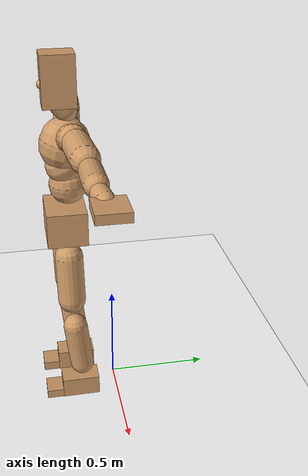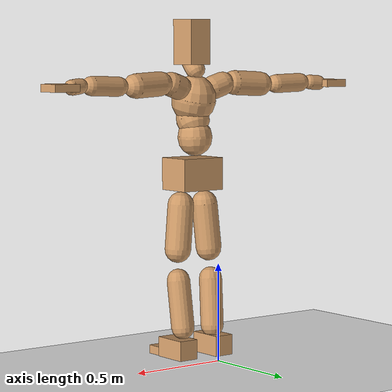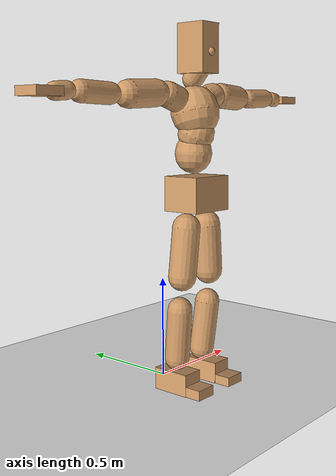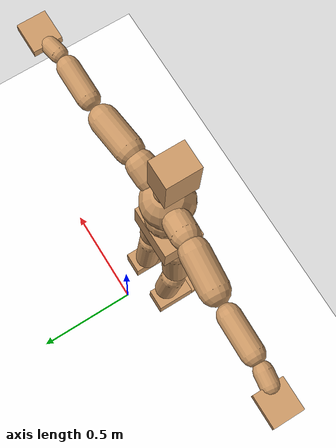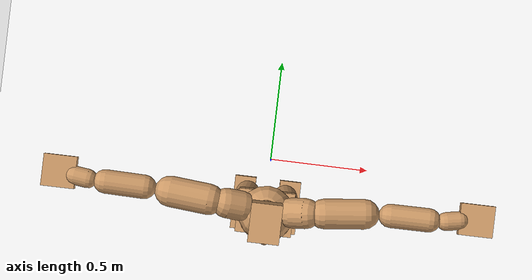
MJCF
<mujoco model="humanoid">
  <option integrator="implicitfast" />

  <visual>
    <global offwidth="1280" offheight="960" />
    <headlight active="1" ambient="0.34 0.34 0.34" diffuse="0.5 0.5 0.5" />
  </visual>

  <default>
    <joint damping="2" stiffness="2" armature="0.01" limited="true" solimplimit="0 .99 .01" />
    <geom condim="1" friction="0.7 0.005 0.0001" solimp=".99 .99 .003" solref="0.015 1" margin="0.001" rgba="0.8 0.6 .4 1" />
    <default class="smplcontact">
      <geom condim="3" friction="1. 0.005 0.0001" solref="0.015 1" solimp="0.98 0.98 0.001" priority="1" />
    </default>
    <default class="stiff_medium">
      <joint stiffness="10" />
    </default>
    <default class="stiff_medium_higher">
      <joint stiffness="50" />
    </default>
    <default class="stiff_high">
      <joint stiffness="100" />
    </default>
  </default>

  <asset>
    <texture type="skybox" builtin="gradient" rgb1="0.99 0.99 0.99" rgb2="0.608 0.828 0.892" width="100" />
    <texture builtin="flat" height="1278" mark="cross" markrgb="1 1 1" name="texgeom" random="0.01" rgb1="0.8 0.6 0.4" rgb2="0.8 0.6 0.4" type="cube" width="127" />
    <texture name="texplane" type="2d" builtin="checker" markrgb="1 1 1" rgb1="0.756 0.772 0.76" rgb2="0.6 0.6 0.6" width="100" height="100" />
    <material name="MatPlane" reflectance="0.5" texture="texplane" texrepeat="1 1" texuniform="true" />
    <material name="geom" texture="texgeom" texuniform="true" />
  </asset>

  <worldbody>
    <light name="tracking_light" pos="0 0 7" dir="0 0 -1" directional="true" cutoff="100" exponent="1" diffuse="1 1 1" specular="0.1 0.1 0.1" mode="trackcom" />
    <camera name="back" pos="0 3 2.4" xyaxes="-1 0 0 0 -1 2" mode="trackcom" />
    <camera name="side" pos="-3 0 2.4" xyaxes="0 -1 0 1 0 2" mode="trackcom" />
    <camera name="front_side" pos="-2.8 -2.8 0.8" xyaxes="0.5 -0.5 0 0.1 0.1 1" mode="trackcom" />
    <geom condim="3" name="floor" pos="0 0 0" rgba="1 1 1 1" size="100 100 .2" type="plane" material="MatPlane" />
    <body name="Pelvis" pos="-0.0018 -0.2233 0.959258" euler="90 0 0">
      <site name="Pelvis" size="0.01" />
      <freejoint name="Pelvis" />
      <geom type="box" pos="-0.0000 -0.0121 -0.0055" size="0.122935 0.08303 0.09545" quat="1.0000 0.0000 0.0000 0.0000" density="3165.830099" name="Pelvis" />
      <body name="L_Hip" pos="0.07089 -0.093228 -0.006936">
        <joint name="L_Hip_x" type="hinge" pos="0 0 0" axis="1 0 0" stiffness="12.913772959183675" range="-160.0 22.92" class="stiff_medium" damping="19.67086949944347" armature="0.013317154847417197"/>
        <joint name="L_Hip_y" type="hinge" pos="0 0 0" axis="0 1 0" stiffness="12.939137857142855" range="-70.0 70.0" class="stiff_medium" damping="13.716441294311576" armature="0.01454044031816506"/>
        <joint name="L_Hip_z" type="hinge" pos="0 0 0" axis="0 0 1" stiffness="12.933318469387753" range="-28.65 90.0" class="stiff_medium" damping="13.122931003341316" armature="0.013315323404899422"/>
        <geom type="capsule" density="2040.816327" fromto="0.007038 -0.0765 -0.000918 0.027948 -0.306204 -0.003672" size="0.06765" name="L_Hip" />
        <body name="L_Knee" pos="0.034986 -0.382704 -0.00459">
          <joint name="L_Knee_x" type="hinge" pos="0 0 0" axis="1 0 0" range="-5.16 171.89" damping="10.613198794499981" armature="0.013517774054281055" stiffness="2.603978755102041"/>
          <joint name="L_Knee_y" type="hinge" pos="0 0 0" axis="0 1 0" range="-4.58 6.88" damping="11.061387435569776" armature="0.014756923432894009" stiffness="2.591035755102041"/>
          <joint name="L_Knee_z" type="hinge" pos="0 0 0" axis="0 0 1" range="-6.88 4.58" damping="10.622461790915674" armature="0.01350871866566859" stiffness="2.6102747346938777"/>
          <geom type="capsule" density="1234.567901" fromto="-0.002754 -0.081192 -0.008874 -0.011118 -0.324768 -0.0357" size="0.05951" name="L_Knee" />
          <body name="L_Ankle" pos="-0.013872 -0.40596 -0.044574">
            <joint name="L_Ankle_x" type="hinge" pos="0 0 0" axis="1 0 0" range="-45.84 45.84" class="stiff_medium" damping="8.453165639774003" armature="0.01462035877603122" stiffness="13.5762"/>
            <joint name="L_Ankle_y" type="hinge" pos="0 0 0" axis="0 1 0" range="-74.48 22.92" class="stiff_medium" damping="4.23455929773648" armature="0.014675594419356806" stiffness="13.5762"/>
            <joint name="L_Ankle_z" type="hinge" pos="0 0 0" axis="0 0 1" range="-4.58 4.58" class="stiff_medium" damping="8.57282284110137" armature="0.015037199794270158" stiffness="13.5762"/>
            <geom type="box" pos="0.023766 -0.024378 0.024684" size="0.05313 0.05104 0.0935" quat="1.0000 0.0000 0.0000 0.0000" density="449.071558" name="L_Ankle" class="smplcontact" />
            <body name="L_Toe" pos="0.026928 -0.056916 0.121686">
              <joint name="L_Toe_x" type="hinge" pos="0 0 0" axis="1 0 0" range="-91.67 22.92" armature="0.015246872933253549" damping="2.8774613555454525" stiffness="2.71524"/>
              <joint name="L_Toe_y" type="hinge" pos="0 0 0" axis="0 1 0" range="-4.58 4.58" armature="0.015500409746313335" damping="2.9012870440402763" stiffness="2.71524"/>
              <joint name="L_Toe_z" type="hinge" pos="0 0 0" axis="0 0 1" range="-4.58 4.58" armature="0.01601304753576421" damping="2.9488732489209646" stiffness="2.71524"/>
              <geom type="box" pos="-0.00306 0.00561 0.025296" size="0.05258 0.022 0.05456" quat="1.0000 0.0000 0.0000 0.0000" density="423.206892" name="L_Toe" class="smplcontact" />
            </body>
          </body>
        </body>
      </body>
      <body name="R_Hip" pos="-0.069054 -0.09231 -0.004386">
        <joint name="R_Hip_x" type="hinge" pos="0 0 0" axis="1 0 0" stiffness="12.913772959183675" range="-160.0 22.92" class="stiff_medium" damping="19.67086949944347" armature="0.013317154847417197"/>
        <joint name="R_Hip_y" type="hinge" pos="0 0 0" axis="0 1 0" stiffness="12.939137857142855" range="-70.0 70.0" class="stiff_medium" damping="13.716441294311576" armature="0.01454044031816506"/>
        <joint name="R_Hip_z" type="hinge" pos="0 0 0" axis="0 0 1" stiffness="12.933318469387753" range="-90.0 28.65" class="stiff_medium" damping="13.122931003341316" armature="0.013315323404899422"/>
        <geom type="capsule" density="2040.816327" fromto="-0.007854 -0.07803 -0.001836 -0.031212 -0.312222 -0.007242" size="0.06666" name="R_Hip" />
        <body name="R_Knee" pos="-0.039066 -0.390252 -0.009078">
          <joint name="R_Knee_x" type="hinge" pos="0 0 0" axis="1 0 0" range="-5.16 171.89" damping="10.613198794499981" armature="0.013517774054281055" stiffness="2.603978755102041"/>
          <joint name="R_Knee_y" type="hinge" pos="0 0 0" axis="0 1 0" range="-6.88 4.58" damping="11.061387435569776" armature="0.014756923432894009" stiffness="2.591035755102041"/>
          <joint name="R_Knee_z" type="hinge" pos="0 0 0" axis="0 0 1" range="-4.58 6.88" damping="10.622461790915674" armature="0.01350871866566859" stiffness="2.6102747346938777"/>
          <geom type="capsule" density="1234.567901" fromto="0.003264 -0.081294 -0.00867 0.012852 -0.325074 -0.034476" size="0.05951" name="R_Knee" />
          <body name="R_Ankle" pos="0.016116 -0.406368 -0.043146">
            <joint name="R_Ankle_x" type="hinge" pos="0 0 0" axis="1 0 0" range="-45.84 45.84" class="stiff_medium" damping="8.453165639774003" armature="0.01462035877603122" stiffness="13.5762"/>
            <joint name="R_Ankle_y" type="hinge" pos="0 0 0" axis="0 1 0" range="-22.92 74.48" class="stiff_medium" damping="4.23455929773648" armature="0.014675594419356806" stiffness="13.5762"/>
            <joint name="R_Ankle_z" type="hinge" pos="0 0 0" axis="0 0 1" range="-4.58 4.58" class="stiff_medium" damping="8.57282284110137" armature="0.015037199794270158" stiffness="13.5762"/>
            <geom type="box" pos="-0.021624 -0.017748 0.026112" size="0.05313 0.05258 0.09515" quat="1.0000 0.0000 0.0000 0.0000" density="434.700981" name="R_Ankle" class="smplcontact" />
            <body name="R_Toe" pos="-0.025908 -0.049062 0.125766">
              <joint name="R_Toe_x" type="hinge" pos="0 0 0" axis="1 0 0" range="-91.67 22.92" armature="0.015246872933253549" damping="2.8774613555454525" stiffness="2.71524"/>
              <joint name="R_Toe_y" type="hinge" pos="0 0 0" axis="0 1 0" range="-4.58 4.58" armature="0.015500409746313335" damping="2.9012870440402763" stiffness="2.71524"/>
              <joint name="R_Toe_z" type="hinge" pos="0 0 0" axis="0 0 1" range="-4.58 4.58" armature="0.01601304753576421" damping="2.9488732489209646" stiffness="2.71524"/>
              <geom type="box" pos="0.004284 0.00459 0.023154" size="0.05269 0.02376 0.05423" quat="1.0000 0.0000 0.0000 0.0000" density="407.384095" name="R_Toe" class="smplcontact" />
            </body>
          </body>
        </body>
      </body>
      <body name="Torso" pos="-0.0025 0.109 -0.0267">
        <joint name="Torso_x" type="hinge" pos="0 0 0" axis="1 0 0" range="-25.78 57.3" class="stiff_medium" damping="20.649750622933148" armature="0.013560313687685246" stiffness="13.975822244897957"/>
        <joint name="Torso_y" type="hinge" pos="0 0 0" axis="0 1 0" range="-57.3 57.3" class="stiff_high" damping="31.345765577524794" armature="0.01771686147346061" stiffness="138.64716122448982"/>
        <joint name="Torso_z" type="hinge" pos="0 0 0" axis="0 0 1" range="-34.38 34.38" class="stiff_high" damping="28.902267822454842" armature="0.014892670367675998" stiffness="140.22688085106384"/>
        <geom type="capsule" density="2040.816327" fromto="0.0025 0.0608 0.0005 0.003 0.0743 0.0006" size="0.088435" name="Torso" />
        <body name="Spine" pos="0.0055 0.1352 0.0011">
          <joint name="Spine_x" type="hinge" pos="0 0 0" axis="1 0 0" stiffness="13.697112653061225" range="-25.78 57.3" class="stiff_medium" damping="20.004319197398836" armature="0.012984822152344744"/>
          <joint name="Spine_y" type="hinge" pos="0 0 0" axis="0 1 0" stiffness="13.792787959183677" range="-57.3 57.3" class="stiff_high" damping="12.502169347221788" armature="0.01770674451037785"/>
          <joint name="Spine_z" type="hinge" pos="0 0 0" axis="0 0 1" stiffness="27.62337346938775" range="-34.38 34.38" class="stiff_high" damping="17.538187135416955" armature="0.015465365486072778"/>
          <geom type="capsule" density="2040.816327" fromto="0.0007 0.0238 0.0114 0.0008 0.0291 0.014" size="0.086825" name="Spine" />
          <body name="Chest" pos="0.0015 0.0529 0.0254">
            <joint name="Chest_x" type="hinge" pos="0 0 0" axis="1 0 0" stiffness="13.71752" range="-25.78 57.3" class="stiff_medium" damping="19.813895661167543" armature="0.012719839260599549"/>
            <joint name="Chest_y" type="hinge" pos="0 0 0" axis="0 1 0" stiffness="15.01764288888889" range="-57.3 57.3" class="stiff_high" damping="13.039498441779394" armature="0.017690496695199412"/>
            <joint name="Chest_z" type="hinge" pos="0 0 0" axis="0 0 1" stiffness="27.076981276595742" range="-34.38 34.38" class="stiff_high" damping="17.544789086866746" armature="0.015789324937327723"/>
            <geom type="capsule" density="2040.816327" fromto="-0.0009 0.0682 -0.0173 -0.001 0.0833 -0.0212" size="0.11523" name="Chest" />
            <body name="Neck" pos="-0.0028 0.2139 -0.0429">
              <joint name="Neck_x" type="hinge" pos="0 0 0" axis="1 0 0" range="-28.65 57.3" class="stiff_medium_higher" damping="10.186345254599932" armature="0.010086749621556654" stiffness="51.43462142857144"/>
              <joint name="Neck_y" type="hinge" pos="0 0 0" axis="0 1 0" range="-40.11 40.11" class="stiff_medium_higher" damping="10.300625061360424" armature="0.010349639184005752" stiffness="51.25921530612244"/>
              <joint name="Neck_z" type="hinge" pos="0 0 0" axis="0 0 1" range="-40.11 40.11" class="stiff_medium_higher" damping="10.104907800267549" armature="0.010072514268974165" stiffness="50.687027551020414"/>
              <geom type="capsule" density="1000" fromto="0.001 0.013 0.0103 0.0041 0.052 0.0411" size="0.05014" name="Neck" />
              <body name="Head" pos="0.0052 0.065 0.0513">
                <joint name="Head_x" type="hinge" pos="0 0 0" axis="1 0 0" range="-28.65 57.3" class="stiff_medium_higher" damping="2.0000000000000004" armature="0.010000000000000005" stiffness="50.0"/>
                <joint name="Head_y" type="hinge" pos="0 0 0" axis="0 1 0" range="-40.11 40.11" class="stiff_medium_higher" damping="1.9999999999999998" armature="0.009999999999999998" stiffness="50.0"/>
                <joint name="Head_z" type="hinge" pos="0 0 0" axis="0 0 1" range="-40.11 40.11" class="stiff_medium_higher" damping="2.0000000000000018" armature="0.010000000000000018" stiffness="50.0"/>
                <geom type="box" pos="-0.0042 0.0876 -0.0116" size="0.0606 0.1154 0.076" quat="1.0000 0.0000 0.0000 0.0000" density="1018.069894" name="Head" />
                <geom type="capsule" name="nose" size="0.02 0.01" pos="0 0.07 0.05" quat="1 0 0 0" mass="0" contype="0" conaffinity="0" />
              </body>
            </body>
            <body name="L_Thorax" pos="0.08274 0.127785 -0.035805">
              <joint name="L_Thorax_x" type="hinge" pos="0 0 0" axis="1 0 0" range="-10.89 4.58" class="stiff_medium_higher" damping="36.66722374048541" armature="0.020052263515756633" stiffness="83.81131734693878"/>
              <joint name="L_Thorax_y" type="hinge" pos="0 0 0" axis="0 1 0" range="-28.65 17.19" class="stiff_medium_higher" damping="34.4498999557511" armature="0.017763614001268076" stiffness="83.51310204081632"/>
              <joint name="L_Thorax_z" type="hinge" pos="0 0 0" axis="0 0 1" range="-31.51 40.11" class="stiff_medium_higher" damping="34.448604180099636" armature="0.017761545177339855" stiffness="83.51654642857143"/>
              <geom type="capsule" density="1000" fromto="0.01911 0.006405 -0.00189 0.07644 0.02562 -0.007455" size="0.06252" name="L_Thorax" />
              <body name="L_Shoulder" pos="0.09555 0.032025 -0.009345">
                <joint name="L_Shoulder_x" type="hinge" pos="0 0 0" axis="1 0 0" range="-97.4 97.4" class="stiff_medium" damping="11.250774171711232" armature="0.020932344464183253" stiffness="16.79749193877551"/>
                <joint name="L_Shoulder_y" type="hinge" pos="0 0 0" axis="0 1 0" range="-108.86 80.21" class="stiff_medium" damping="10.362903571637078" armature="0.017838022759870804" stiffness="16.72298112244898"/>
                <joint name="L_Shoulder_z" type="hinge" pos="0 0 0" axis="0 0 1" range="-97.4 85.94" class="stiff_medium" damping="10.364019059069612" armature="0.017835273803587976" stiffness="16.729159591836734"/>
                <geom type="capsule" density="1000" fromto="0.054495 -0.00273 -0.005775 0.218085 -0.01071 -0.0231" size="0.06204" name="L_Shoulder" />
                <body name="L_Elbow" pos="0.27258 -0.01344 -0.028875">
                  <joint name="L_Elbow_x" type="hinge" pos="0 0 0" axis="1 0 0" range="-17.19 4.58" damping="9.740406835323766" armature="0.022372807255207662" stiffness="3.392530020408163"/>
                  <joint name="L_Elbow_y" type="hinge" pos="0 0 0" axis="0 1 0" range="-180.0 17.19" damping="8.785909572890047" armature="0.018202067651064354" stiffness="3.3926786122448984"/>
                  <joint name="L_Elbow_z" type="hinge" pos="0 0 0" axis="0 0 1" range="-100.84 4.58" damping="8.784445856511919" armature="0.018187638618942407" stiffness="3.3942389387755103"/>
                  <geom type="capsule" density="1000" fromto="0.05229 0.00189 -0.00021 0.20937 0.00756 -0.000945" size="0.0486" name="L_Elbow" />
                  <body name="L_Wrist" pos="0.26166 0.00945 -0.00126">
                    <joint name="L_Wrist_x" type="hinge" pos="0 0 0" axis="1 0 0" range="-180.0 22.92" armature="0.022870704610560306" damping="4.028108486509442" stiffness="3.5472580000000007"/>
                    <joint name="L_Wrist_y" type="hinge" pos="0 0 0" axis="0 1 0" range="-17.19 17.19" armature="0.01950353274109256" damping="3.7135543361183925" stiffness="3.5353815102040818"/>
                    <joint name="L_Wrist_z" type="hinge" pos="0 0 0" axis="0 0 1" range="-22.92 22.92" armature="0.019313813991295437" damping="3.6970963628233315" stiffness="3.5385350408163267"/>
                    <geom type="capsule" density="1000" fromto="0.01764 -0.00168 -0.00315 0.07056 -0.006825 -0.0126" size="0.03816" name="L_Wrist" class="smplcontact" />
                    <body name="L_Hand" pos="0.0882 -0.00861 -0.015645">
                      <joint name="L_Hand_x" type="hinge" pos="0 0 0" axis="1 0 0" range="-17.19 17.19" armature="0.02462912215184373" damping="4.227863726862788" stiffness="3.6287999999999996"/>
                      <joint name="L_Hand_y" type="hinge" pos="0 0 0" axis="0 1 0" range="-51.57 51.57" armature="0.021810478964606434" damping="3.9785893496756817" stiffness="3.6287999999999996"/>
                      <joint name="L_Hand_z" type="hinge" pos="0 0 0" axis="0 0 1" range="-91.67 91.67" armature="0.02105913111169712" damping="3.9094596807775495" stiffness="3.6287999999999996"/>
                      <geom type="box" pos="0.051765 0.00105 -0.00609" size="0.0702 0.01896 0.06456" quat="1.0000 0.0000 0.0000 0.0000" density="400.552564" name="L_Hand" class="smplcontact" />
                    </body>
                  </body>
                </body>
              </body>
            </body>
            <body name="R_Thorax" pos="-0.08589 0.12474 -0.04053">
              <joint name="R_Thorax_x" type="hinge" pos="0 0 0" axis="1 0 0" range="-10.89 4.58" class="stiff_medium_higher" damping="36.66722374048541" armature="0.020052263515756633" stiffness="83.81131734693878"/>
              <joint name="R_Thorax_y" type="hinge" pos="0 0 0" axis="0 1 0" range="-17.19 28.65" class="stiff_medium_higher" damping="34.4498999557511" armature="0.017763614001268076" stiffness="83.51310204081632"/>
              <joint name="R_Thorax_z" type="hinge" pos="0 0 0" axis="0 0 1" range="-40.11 31.51" class="stiff_medium_higher" damping="34.448604180099636" armature="0.017761545177339855" stiffness="83.51654642857143"/>
              <geom type="capsule" density="1000" fromto="-0.02016 0.006825 -0.00189 -0.08064 0.0273 -0.007665" size="0.06132" name="R_Thorax" />
              <body name="R_Shoulder" pos="-0.1008 0.03423 -0.009555">
                <joint name="R_Shoulder_x" type="hinge" pos="0 0 0" axis="1 0 0" range="-97.4 97.4" class="stiff_medium" damping="11.250774171711232" armature="0.020932344464183253" stiffness="16.79749193877551"/>
                <joint name="R_Shoulder_y" type="hinge" pos="0 0 0" axis="0 1 0" range="-80.21 108.86" class="stiff_medium" damping="10.362903571637078" armature="0.017838022759870804" stiffness="16.72298112244898"/>
                <joint name="R_Shoulder_z" type="hinge" pos="0 0 0" axis="0 0 1" range="-85.94 97.4" class="stiff_medium" damping="10.364019059069612" armature="0.017835273803587976" stiffness="16.729159591836734"/>
                <geom type="capsule" density="1000" fromto="-0.053235 -0.002835 -0.004515 -0.21315 -0.011235 -0.017955" size="0.06372" name="R_Shoulder" />
                <body name="R_Elbow" pos="-0.266385 -0.013965 -0.02247">
                  <joint name="R_Elbow_x" type="hinge" pos="0 0 0" axis="1 0 0" range="-17.19 4.58" damping="9.740406835323766" armature="0.022372807255207662" stiffness="3.392530020408163"/>
                  <joint name="R_Elbow_y" type="hinge" pos="0 0 0" axis="0 1 0" range="-17.19 180.0" damping="8.785909572890047" armature="0.018202067651064354" stiffness="3.3926786122448984"/>
                  <joint name="R_Elbow_z" type="hinge" pos="0 0 0" axis="0 0 1" range="-4.58 100.84" damping="8.784445856511919" armature="0.018187638618942407" stiffness="3.3942389387755103"/>
                  <geom type="capsule" density="1000" fromto="-0.053655 0.00168 -0.001155 -0.21441 0.00651 -0.00462" size="0.04896" name="R_Elbow" />
                  <body name="R_Wrist" pos="-0.268065 0.00819 -0.00588">
                    <joint name="R_Wrist_x" type="hinge" pos="0 0 0" axis="1 0 0" range="-180.0 22.92" armature="0.022870704610560306" damping="4.028108486509442" stiffness="3.5472580000000007"/>
                    <joint name="R_Wrist_y" type="hinge" pos="0 0 0" axis="0 1 0" range="-17.19 17.19" armature="0.01950353274109256" damping="3.7135543361183925" stiffness="3.5353815102040818"/>
                    <joint name="R_Wrist_z" type="hinge" pos="0 0 0" axis="0 0 1" range="-22.92 22.92" armature="0.019313813991295437" damping="3.6970963628233315" stiffness="3.5385350408163267"/>
                    <geom type="capsule" density="1000" fromto="-0.017745 -0.00126 -0.002205 -0.071085 -0.005145 -0.008715" size="0.03912" name="R_Wrist" class="smplcontact" />
                    <body name="R_Hand" pos="-0.08883 -0.006405 -0.010815">
                      <joint name="R_Hand_x" type="hinge" pos="0 0 0" axis="1 0 0" range="-17.19 17.19" armature="0.02462912215184373" damping="4.227863726862788" stiffness="3.6287999999999996"/>
                      <joint name="R_Hand_y" type="hinge" pos="0 0 0" axis="0 1 0" range="-51.57 51.57" armature="0.021810478964606434" damping="3.9785893496756817" stiffness="3.6287999999999996"/>
                      <joint name="R_Hand_z" type="hinge" pos="0 0 0" axis="0 0 1" range="-91.67 91.67" armature="0.02105913111169712" damping="3.9094596807775495" stiffness="3.6287999999999996"/>
                      <geom type="box" pos="-0.04851 -0.000945 -0.008295" size="0.06828 0.01968 0.06552" quat="1.0000 0.0000 0.0000 0.0000" density="403.679611" name="R_Hand" class="smplcontact" />
                    </body>
                  </body>
                </body>
              </body>
            </body>
          </body>
        </body>
      </body>
    </body>
  </worldbody>
  <actuator>
    <general name="L_Hip_x" joint="L_Hip_x" biastype="affine" gainprm="371.0515212100515" biasprm="-278.06550692911577 -232.4479132653061 -2.622782599925796" ctrllimited="true" ctrlrange="-1 1" forcerange="-464.8958265306122 464.8958265306122" />
    <general name="L_Hip_y" joint="L_Hip_y" biastype="affine" gainprm="284.546503050499" biasprm="0.0 -232.9044814285714 -2.7432882588623153" ctrllimited="true" ctrlrange="-1 1" forcerange="-465.8089628571428 465.8089628571428" />
    <general name="L_Hip_z" joint="L_Hip_z" biastype="affine" gainprm="241.04470250522186" biasprm="124.63626210446994 -232.79973244897957 -2.624586200668263" ctrllimited="true" ctrlrange="-1 1" forcerange="-465.59946489795914 465.59946489795914" />
    <general name="L_Knee_x" joint="L_Knee_x" biastype="affine" gainprm="362.09560133220083" biasprm="340.98954877219904 -234.3580879591837 -2.6532996986249953" ctrllimited="true" ctrlrange="-1 1" forcerange="-468.7161759183674 468.7161759183674" />
    <general name="L_Knee_y" joint="L_Knee_y" biastype="affine" gainprm="23.32103952963986" biasprm="4.680487863714807 -233.1932179591837 -2.765346858892444" ctrllimited="true" ctrlrange="-1 1" forcerange="-466.3864359183674 466.3864359183674" />
    <general name="L_Knee_z" joint="L_Knee_z" biastype="affine" gainprm="23.494203100496676" biasprm="-4.715241459960066 -234.924726122449 -2.6556154477289184" ctrllimited="true" ctrlrange="-1 1" forcerange="-469.849452244898 469.849452244898" />
    <general name="L_Ankle_x" joint="L_Ankle_x" biastype="affine" gainprm="97.75584030096192" biasprm="0.0 -122.1858 -2.8177218799246675" ctrllimited="true" ctrlrange="-1 1" forcerange="-244.3716 244.3716" />
    <general name="L_Ankle_y" joint="L_Ankle_y" biastype="affine" gainprm="103.85491759722612" biasprm="-54.976997446745166 -122.1858 -2.8230395318243198" ctrllimited="true" ctrlrange="-1 1" forcerange="-244.3716 244.3716" />
    <general name="L_Ankle_z" joint="L_Ankle_z" biastype="affine" gainprm="9.767053852059457" biasprm="0.0 -122.1858 -2.857607613700457" ctrllimited="true" ctrlrange="-1 1" forcerange="-244.3716 244.3716" />
    <general name="L_Toe_x" joint="L_Toe_x" biastype="affine" gainprm="97.74731012292516" biasprm="-58.6449740025404 -97.74864000000001 -1.150984542218181" ctrllimited="true" ctrlrange="-1 1" forcerange="-195.49728000000002 195.49728000000002" />
    <general name="L_Toe_y" joint="L_Toe_y" biastype="affine" gainprm="7.813643081647566" biasprm="0.0 -97.74864000000001 -1.1605148176161106" ctrllimited="true" ctrlrange="-1 1" forcerange="-195.49728000000002 195.49728000000002" />
    <general name="L_Toe_z" joint="L_Toe_z" biastype="affine" gainprm="7.813643081647566" biasprm="0.0 -97.74864000000001 -1.1795492995683858" ctrllimited="true" ctrlrange="-1 1" forcerange="-195.49728000000002 195.49728000000002" />
    <general name="R_Hip_x" joint="R_Hip_x" biastype="affine" gainprm="371.0515212100515" biasprm="-278.06550692911577 -232.4479132653061 -2.622782599925796" ctrllimited="true" ctrlrange="-1 1" forcerange="-464.8958265306122 464.8958265306122" />
    <general name="R_Hip_y" joint="R_Hip_y" biastype="affine" gainprm="284.546503050499" biasprm="0.0 -232.9044814285714 -2.7432882588623153" ctrllimited="true" ctrlrange="-1 1" forcerange="-465.8089628571428 465.8089628571428" />
    <general name="R_Hip_z" joint="R_Hip_z" biastype="affine" gainprm="241.04470250522186" biasprm="-124.63626210446994 -232.79973244897957 -2.624586200668263" ctrllimited="true" ctrlrange="-1 1" forcerange="-465.59946489795914 465.59946489795914" />
    <general name="R_Knee_x" joint="R_Knee_x" biastype="affine" gainprm="362.09560133220083" biasprm="340.98954877219904 -234.3580879591837 -2.6532996986249953" ctrllimited="true" ctrlrange="-1 1" forcerange="-468.7161759183674 468.7161759183674" />
    <general name="R_Knee_y" joint="R_Knee_y" biastype="affine" gainprm="23.32103952963986" biasprm="-4.680487863714807 -233.1932179591837 -2.765346858892444" ctrllimited="true" ctrlrange="-1 1" forcerange="-466.3864359183674 466.3864359183674" />
    <general name="R_Knee_z" joint="R_Knee_z" biastype="affine" gainprm="23.494203100496676" biasprm="4.715241459960066 -234.924726122449 -2.6556154477289184" ctrllimited="true" ctrlrange="-1 1" forcerange="-469.849452244898 469.849452244898" />
    <general name="R_Ankle_x" joint="R_Ankle_x" biastype="affine" gainprm="97.75584030096192" biasprm="0.0 -122.1858 -2.8177218799246675" ctrllimited="true" ctrlrange="-1 1" forcerange="-244.3716 244.3716" />
    <general name="R_Ankle_y" joint="R_Ankle_y" biastype="affine" gainprm="103.85491759722612" biasprm="54.976997446745166 -122.1858 -2.8230395318243198" ctrllimited="true" ctrlrange="-1 1" forcerange="-244.3716 244.3716" />
    <general name="R_Ankle_z" joint="R_Ankle_z" biastype="affine" gainprm="9.767053852059457" biasprm="0.0 -122.1858 -2.857607613700457" ctrllimited="true" ctrlrange="-1 1" forcerange="-244.3716 244.3716" />
    <general name="R_Toe_x" joint="R_Toe_x" biastype="affine" gainprm="97.74731012292516" biasprm="-58.6449740025404 -97.74864000000001 -1.150984542218181" ctrllimited="true" ctrlrange="-1 1" forcerange="-195.49728000000002 195.49728000000002" />
    <general name="R_Toe_y" joint="R_Toe_y" biastype="affine" gainprm="7.813643081647566" biasprm="0.0 -97.74864000000001 -1.1605148176161106" ctrllimited="true" ctrlrange="-1 1" forcerange="-195.49728000000002 195.49728000000002" />
    <general name="R_Toe_z" joint="R_Toe_z" biastype="affine" gainprm="7.813643081647566" biasprm="0.0 -97.74864000000001 -1.1795492995683858" ctrllimited="true" ctrlrange="-1 1" forcerange="-195.49728000000002 195.49728000000002" />
    <general name="Torso_x" joint="Torso_x" biastype="affine" gainprm="243.18258454083997" biasprm="92.26185682146453 -335.419733877551 -5.506600166115506" ctrllimited="true" ctrlrange="-1 1" forcerange="-503.12960081632644 503.12960081632644" />
    <general name="Torso_y" joint="Torso_y" biastype="affine" gainprm="332.77769800196774" biasprm="0.0 -332.75318693877557 -6.269153115504959" ctrllimited="true" ctrlrange="-1 1" forcerange="-499.1297804081633 499.1297804081633" />
    <general name="Torso_z" joint="Torso_z" biastype="affine" gainprm="201.94158262810816" biasprm="0.0 -336.5445140425532 -5.780453564490968" ctrllimited="true" ctrlrange="-1 1" forcerange="-504.8167710638298 504.8167710638298" />
    <general name="Spine_x" joint="Spine_x" biastype="affine" gainprm="238.33297228250416" biasprm="90.42194615243777 -328.7307036734694 -5.334485119306356" ctrllimited="true" ctrlrange="-1 1" forcerange="-493.0960555102041 493.0960555102041" />
    <general name="Spine_y" joint="Spine_y" biastype="affine" gainprm="331.05129492371196" biasprm="0.0 -331.02691102040825 -6.251084673610894" ctrllimited="true" ctrlrange="-1 1" forcerange="-496.54036653061235 496.54036653061235" />
    <general name="Spine_z" joint="Spine_z" biastype="affine" gainprm="198.9029393679599" biasprm="0.0 -331.480481632653 -5.846062378472318" ctrllimited="true" ctrlrange="-1 1" forcerange="-497.22072244897953 497.22072244897953" />
    <general name="Chest_x" joint="Chest_x" biastype="affine" gainprm="238.68806490497974" biasprm="90.55666593409917 -329.22048 -5.283705509644678" ctrllimited="true" ctrlrange="-1 1" forcerange="-493.83072000000004 493.83072000000004" />
    <general name="Chest_y" joint="Chest_y" biastype="affine" gainprm="360.44997862511804" biasprm="0.0 -360.42342933333333 -6.519749220889697" ctrllimited="true" ctrlrange="-1 1" forcerange="-540.635144 540.635144" />
    <general name="Chest_z" joint="Chest_z" biastype="affine" gainprm="194.9686257941861" biasprm="0.0 -324.9237753191489 -5.848263028955582" ctrllimited="true" ctrlrange="-1 1" forcerange="-487.38566297872336 487.38566297872336" />
    <general name="Neck_x" joint="Neck_x" biastype="affine" gainprm="27.776741494187597" biasprm="9.258913831395866 -37.03292742857143 -0.8149076203679946" ctrllimited="true" ctrlrange="-1 1" forcerange="-74.06585485714287 74.06585485714287" />
    <general name="Neck_y" joint="Neck_y" biastype="affine" gainprm="25.836547530181853" biasprm="0.0 -36.90663502040816 -0.824050004908834" ctrllimited="true" ctrlrange="-1 1" forcerange="-73.81327004081632 73.81327004081632" />
    <general name="Neck_z" joint="Neck_z" biastype="affine" gainprm="25.548143658944365" biasprm="0.0 -36.4946598367347 -0.8083926240214039" ctrllimited="true" ctrlrange="-1 1" forcerange="-72.9893196734694 72.9893196734694" />
    <general name="Head_x" joint="Head_x" biastype="affine" gainprm="18.001325905069514" biasprm="6.000441968356505 -24.0 -0.8000000000000003" ctrllimited="true" ctrlrange="-1 1" forcerange="-48.0 48.0" />
    <general name="Head_y" joint="Head_y" biastype="affine" gainprm="16.801237511398213" biasprm="0.0 -24.0 -0.7999999999999999" ctrllimited="true" ctrlrange="-1 1" forcerange="-48.0 48.0" />
    <general name="Head_z" joint="Head_z" biastype="affine" gainprm="16.801237511398213" biasprm="0.0 -24.0 -0.8000000000000007" ctrllimited="true" ctrlrange="-1 1" forcerange="-48.0 48.0" />
    <general name="L_Thorax_x" joint="L_Thorax_x" biastype="affine" gainprm="27.15511174559235" biasprm="-11.076196193580337 -201.14716163265308 -2.9333778992388333" ctrllimited="true" ctrlrange="-1 1" forcerange="-402.29432326530616 402.29432326530616" />
    <general name="L_Thorax_y" joint="L_Thorax_y" biastype="affine" gainprm="80.17848358293656" biasprm="-20.04462089573414 -200.43144489795918 -2.755991996460088" ctrllimited="true" ctrlrange="-1 1" forcerange="-400.86288979591836 400.86288979591836" />
    <general name="L_Thorax_z" joint="L_Thorax_z" biastype="affine" gainprm="125.2753017282582" biasprm="15.042831539556275 -200.43971142857143 -2.755888334407971" ctrllimited="true" ctrlrange="-1 1" forcerange="-400.87942285714286 400.87942285714286" />
    <general name="L_Shoulder_x" joint="L_Shoulder_x" biastype="affine" gainprm="137.06355857194015" biasprm="0.0 -80.62796130612244 -3.0002064457896616" ctrllimited="true" ctrlrange="-1 1" forcerange="-161.2559226122449 161.2559226122449" />
    <general name="L_Shoulder_y" joint="L_Shoulder_y" biastype="affine" gainprm="132.44175683548877" biasprm="-20.069055552635287 -80.2703093877551 -2.763440952436554" ctrllimited="true" ctrlrange="-1 1" forcerange="-160.5406187755102 160.5406187755102" />
    <general name="L_Shoulder_z" joint="L_Shoulder_z" biastype="affine" gainprm="128.47539468907786" biasprm="-8.030588104815292 -80.29996604081633 -2.763738415751897" ctrllimited="true" ctrlrange="-1 1" forcerange="-160.59993208163266 160.59993208163266" />
    <general name="L_Elbow_x" joint="L_Elbow_x" biastype="affine" gainprm="23.20235146628212" biasprm="-13.439671657777568 -122.13108073469387 -1.5584650936518027" ctrllimited="true" ctrlrange="-1 1" forcerange="-244.26216146938773 244.26216146938773" />
    <general name="L_Elbow_y" joint="L_Elbow_y" biastype="affine" gainprm="210.17326969300998" biasprm="-173.52964165890236 -122.13643004081635 -1.4057455316624077" ctrllimited="true" ctrlrange="-1 1" forcerange="-244.2728600816327 244.2728600816327" />
    <general name="L_Elbow_z" joint="L_Elbow_z" biastype="affine" gainprm="112.41267847996095" biasprm="-102.64508091900059 -122.19260179591836 -1.4055113370419072" ctrllimited="true" ctrlrange="-1 1" forcerange="-244.38520359183673 244.38520359183673" />
    <general name="L_Wrist_x" joint="L_Wrist_x" biastype="affine" gainprm="37.689142174720544" biasprm="-29.1750958644052 -21.283548000000003 -1.611243394603777" ctrllimited="true" ctrlrange="-1 1" forcerange="-42.56709600000001 42.56709600000001" />
    <general name="L_Wrist_y" joint="L_Wrist_y" biastype="affine" gainprm="6.364155476394053" biasprm="0.0 -21.21228906122449 -1.485421734447357" ctrllimited="true" ctrlrange="-1 1" forcerange="-42.42457812244898 42.42457812244898" />
    <general name="L_Wrist_z" joint="L_Wrist_z" biastype="affine" gainprm="8.493109666165756" biasprm="0.0 -21.23121024489796 -1.4788385451293327" ctrllimited="true" ctrlrange="-1 1" forcerange="-42.46242048979592 42.46242048979592" />
    <general name="L_Hand_x" joint="L_Hand_x" biastype="affine" gainprm="6.532321144431626" biasprm="0.0 -21.772799999999997 -1.6911454907451153" ctrllimited="true" ctrlrange="-1 1" forcerange="-43.54559999999999 43.54559999999999" />
    <general name="L_Hand_y" joint="L_Hand_y" biastype="affine" gainprm="19.596963433294874" biasprm="0.0 -21.772799999999997 -1.5914357398702728" ctrllimited="true" ctrlrange="-1 1" forcerange="-43.54559999999999 43.54559999999999" />
    <general name="L_Hand_z" joint="L_Hand_z" biastype="affine" gainprm="34.835246033161546" biasprm="0.0 -21.772799999999997 -1.5637838723110198" ctrllimited="true" ctrlrange="-1 1" forcerange="-43.54559999999999 43.54559999999999" />
    <general name="R_Thorax_x" joint="R_Thorax_x" biastype="affine" gainprm="27.15511174559235" biasprm="-11.076196193580337 -201.14716163265308 -2.9333778992388333" ctrllimited="true" ctrlrange="-1 1" forcerange="-402.29432326530616 402.29432326530616" />
    <general name="R_Thorax_y" joint="R_Thorax_y" biastype="affine" gainprm="80.17848358293656" biasprm="20.04462089573413 -200.43144489795918 -2.755991996460088" ctrllimited="true" ctrlrange="-1 1" forcerange="-400.86288979591836 400.86288979591836" />
    <general name="R_Thorax_z" joint="R_Thorax_z" biastype="affine" gainprm="125.2753017282582" biasprm="-15.042831539556275 -200.43971142857143 -2.755888334407971" ctrllimited="true" ctrlrange="-1 1" forcerange="-400.87942285714286 400.87942285714286" />
    <general name="R_Shoulder_x" joint="R_Shoulder_x" biastype="affine" gainprm="137.06355857194015" biasprm="0.0 -80.62796130612244 -3.0002064457896616" ctrllimited="true" ctrlrange="-1 1" forcerange="-161.2559226122449 161.2559226122449" />
    <general name="R_Shoulder_y" joint="R_Shoulder_y" biastype="affine" gainprm="132.44175683548877" biasprm="20.069055552635287 -80.2703093877551 -2.763440952436554" ctrllimited="true" ctrlrange="-1 1" forcerange="-160.5406187755102 160.5406187755102" />
    <general name="R_Shoulder_z" joint="R_Shoulder_z" biastype="affine" gainprm="128.47539468907786" biasprm="8.030588104815273 -80.29996604081633 -2.763738415751897" ctrllimited="true" ctrlrange="-1 1" forcerange="-160.59993208163266 160.59993208163266" />
    <general name="R_Elbow_x" joint="R_Elbow_x" biastype="affine" gainprm="23.20235146628212" biasprm="-13.439671657777568 -122.13108073469387 -1.5584650936518027" ctrllimited="true" ctrlrange="-1 1" forcerange="-244.26216146938773 244.26216146938773" />
    <general name="R_Elbow_y" joint="R_Elbow_y" biastype="affine" gainprm="210.17326969300998" biasprm="173.52964165890236 -122.13643004081635 -1.4057455316624077" ctrllimited="true" ctrlrange="-1 1" forcerange="-244.2728600816327 244.2728600816327" />
    <general name="R_Elbow_z" joint="R_Elbow_z" biastype="affine" gainprm="112.41267847996095" biasprm="102.64508091900058 -122.19260179591836 -1.4055113370419072" ctrllimited="true" ctrlrange="-1 1" forcerange="-244.38520359183673 244.38520359183673" />
    <general name="R_Wrist_x" joint="R_Wrist_x" biastype="affine" gainprm="37.689142174720544" biasprm="-29.1750958644052 -21.283548000000003 -1.611243394603777" ctrllimited="true" ctrlrange="-1 1" forcerange="-42.56709600000001 42.56709600000001" />
    <general name="R_Wrist_y" joint="R_Wrist_y" biastype="affine" gainprm="6.364155476394053" biasprm="0.0 -21.21228906122449 -1.485421734447357" ctrllimited="true" ctrlrange="-1 1" forcerange="-42.42457812244898 42.42457812244898" />
    <general name="R_Wrist_z" joint="R_Wrist_z" biastype="affine" gainprm="8.493109666165756" biasprm="0.0 -21.23121024489796 -1.4788385451293327" ctrllimited="true" ctrlrange="-1 1" forcerange="-42.46242048979592 42.46242048979592" />
    <general name="R_Hand_x" joint="R_Hand_x" biastype="affine" gainprm="6.532321144431626" biasprm="0.0 -21.772799999999997 -1.6911454907451153" ctrllimited="true" ctrlrange="-1 1" forcerange="-43.54559999999999 43.54559999999999" />
    <general name="R_Hand_y" joint="R_Hand_y" biastype="affine" gainprm="19.596963433294874" biasprm="0.0 -21.772799999999997 -1.5914357398702728" ctrllimited="true" ctrlrange="-1 1" forcerange="-43.54559999999999 43.54559999999999" />
    <general name="R_Hand_z" joint="R_Hand_z" biastype="affine" gainprm="34.835246033161546" biasprm="0.0 -21.772799999999997 -1.5637838723110198" ctrllimited="true" ctrlrange="-1 1" forcerange="-43.54559999999999 43.54559999999999" />
  </actuator>
  <contact>
    <exclude body1="Torso" body2="Chest" />
    <exclude body1="Head" body2="Chest" />
    <exclude body1="R_Knee" body2="R_Toe" />
    <exclude body1="R_Knee" body2="L_Ankle" />
    <exclude body1="R_Knee" body2="L_Toe" />
    <exclude body1="L_Knee" body2="L_Toe" />
    <exclude body1="L_Knee" body2="R_Ankle" />
    <exclude body1="L_Knee" body2="R_Toe" />
    <exclude body1="L_Shoulder" body2="Chest" />
    <exclude body1="R_Shoulder" body2="Chest" />
  </contact>
  <sensor>
    <framelinvel name="sensor_Pelvis_framelinvel" objtype="xbody" objname="Pelvis" />
    <framelinvel name="sensor_L_Hip_framelinvel" objtype="xbody" objname="L_Hip" />
    <framelinvel name="sensor_L_Knee_framelinvel" objtype="xbody" objname="L_Knee" />
    <framelinvel name="sensor_L_Ankle_framelinvel" objtype="xbody" objname="L_Ankle" />
    <framelinvel name="sensor_L_Toe_framelinvel" objtype="xbody" objname="L_Toe" />
    <framelinvel name="sensor_R_Hip_framelinvel" objtype="xbody" objname="R_Hip" />
    <framelinvel name="sensor_R_Knee_framelinvel" objtype="xbody" objname="R_Knee" />
    <framelinvel name="sensor_R_Ankle_framelinvel" objtype="xbody" objname="R_Ankle" />
    <framelinvel name="sensor_R_Toe_framelinvel" objtype="xbody" objname="R_Toe" />
    <framelinvel name="sensor_Torso_framelinvel" objtype="xbody" objname="Torso" />
    <framelinvel name="sensor_Spine_framelinvel" objtype="xbody" objname="Spine" />
    <framelinvel name="sensor_Chest_framelinvel" objtype="xbody" objname="Chest" />
    <framelinvel name="sensor_Neck_framelinvel" objtype="xbody" objname="Neck" />
    <framelinvel name="sensor_Head_framelinvel" objtype="xbody" objname="Head" />
    <framelinvel name="sensor_L_Thorax_framelinvel" objtype="xbody" objname="L_Thorax" />
    <framelinvel name="sensor_L_Shoulder_framelinvel" objtype="xbody" objname="L_Shoulder" />
    <framelinvel name="sensor_L_Elbow_framelinvel" objtype="xbody" objname="L_Elbow" />
    <framelinvel name="sensor_L_Wrist_framelinvel" objtype="xbody" objname="L_Wrist" />
    <framelinvel name="sensor_L_Hand_framelinvel" objtype="xbody" objname="L_Hand" />
    <framelinvel name="sensor_R_Thorax_framelinvel" objtype="xbody" objname="R_Thorax" />
    <framelinvel name="sensor_R_Shoulder_framelinvel" objtype="xbody" objname="R_Shoulder" />
    <framelinvel name="sensor_R_Elbow_framelinvel" objtype="xbody" objname="R_Elbow" />
    <framelinvel name="sensor_R_Wrist_framelinvel" objtype="xbody" objname="R_Wrist" />
    <framelinvel name="sensor_R_Hand_framelinvel" objtype="xbody" objname="R_Hand" />
    <frameangvel name="sensor_Pelvis_frameangvel" objtype="xbody" objname="Pelvis" />
    <frameangvel name="sensor_L_Hip_frameangvel" objtype="xbody" objname="L_Hip" />
    <frameangvel name="sensor_L_Knee_frameangvel" objtype="xbody" objname="L_Knee" />
    <frameangvel name="sensor_L_Ankle_frameangvel" objtype="xbody" objname="L_Ankle" />
    <frameangvel name="sensor_L_Toe_frameangvel" objtype="xbody" objname="L_Toe" />
    <frameangvel name="sensor_R_Hip_frameangvel" objtype="xbody" objname="R_Hip" />
    <frameangvel name="sensor_R_Knee_frameangvel" objtype="xbody" objname="R_Knee" />
    <frameangvel name="sensor_R_Ankle_frameangvel" objtype="xbody" objname="R_Ankle" />
    <frameangvel name="sensor_R_Toe_frameangvel" objtype="xbody" objname="R_Toe" />
    <frameangvel name="sensor_Torso_frameangvel" objtype="xbody" objname="Torso" />
    <frameangvel name="sensor_Spine_frameangvel" objtype="xbody" objname="Spine" />
    <frameangvel name="sensor_Chest_frameangvel" objtype="xbody" objname="Chest" />
    <frameangvel name="sensor_Neck_frameangvel" objtype="xbody" objname="Neck" />
    <frameangvel name="sensor_Head_frameangvel" objtype="xbody" objname="Head" />
    <frameangvel name="sensor_L_Thorax_frameangvel" objtype="xbody" objname="L_Thorax" />
    <frameangvel name="sensor_L_Shoulder_frameangvel" objtype="xbody" objname="L_Shoulder" />
    <frameangvel name="sensor_L_Elbow_frameangvel" objtype="xbody" objname="L_Elbow" />
    <frameangvel name="sensor_L_Wrist_frameangvel" objtype="xbody" objname="L_Wrist" />
    <frameangvel name="sensor_L_Hand_frameangvel" objtype="xbody" objname="L_Hand" />
    <frameangvel name="sensor_R_Thorax_frameangvel" objtype="xbody" objname="R_Thorax" />
    <frameangvel name="sensor_R_Shoulder_frameangvel" objtype="xbody" objname="R_Shoulder" />
    <frameangvel name="sensor_R_Elbow_frameangvel" objtype="xbody" objname="R_Elbow" />
    <frameangvel name="sensor_R_Wrist_frameangvel" objtype="xbody" objname="R_Wrist" />
    <frameangvel name="sensor_R_Hand_frameangvel" objtype="xbody" objname="R_Hand" />
    <subtreelinvel name="Chest_subtreelinvel" body="Chest" />
    <gyro name="Pelvis_gyro" site="Pelvis" />
  </sensor>
</mujoco>
